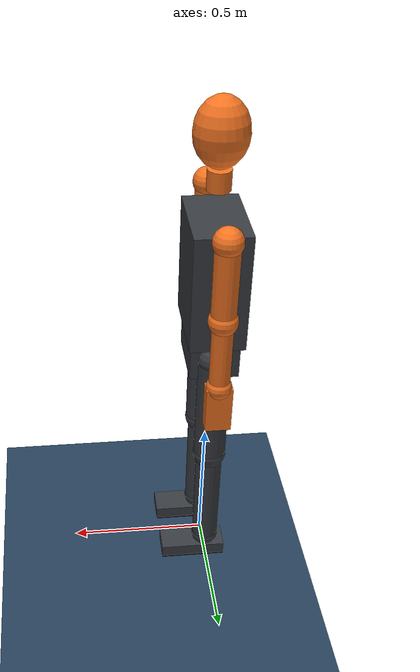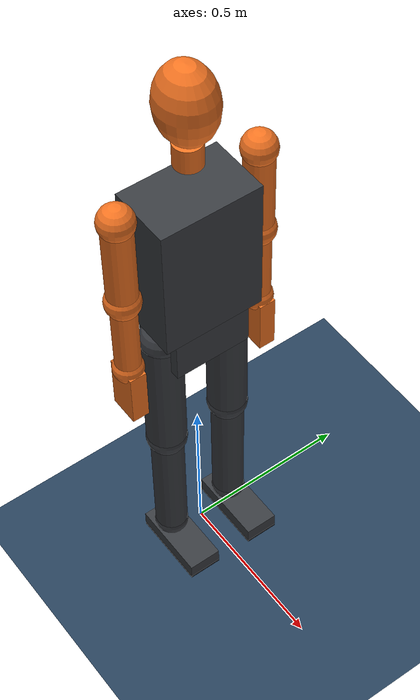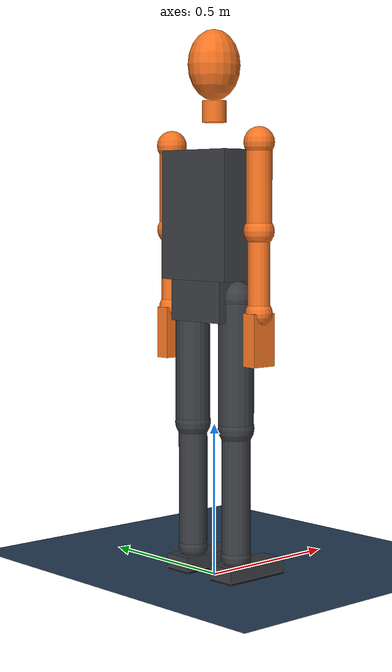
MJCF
<mujoco model="erobot_scene">
  <include file="erobot.xml"/>
  <statistic center="0 0 0.8" extent="2.0"/>
  <visual>
    <headlight diffuse="0.6 0.6 0.6" ambient="0.3 0.3 0.3" specular="0 0 0"/>
    <rgba haze="0.15 0.25 0.35 1"/>
    <global azimuth="120" elevation="-20" offwidth="640" offheight="960"/>
  </visual>
  <asset>
    <texture type="skybox" builtin="gradient" rgb1="0.3 0.5 0.7" rgb2="0 0 0" width="512" height="512"/>
    <texture name="groundplane" type="2d" builtin="checker" mark="edge"
             rgb1="0.2 0.3 0.4" rgb2="0.1 0.2 0.3" markrgb="0.8 0.8 0.8"
             width="300" height="300"/>
    <material name="groundplane" texture="groundplane" texuniform="true"
              texrepeat="5 5" reflectance="0.2"/>
  </asset>
  <worldbody>
    <light pos="0 0 3.0" dir="0 0 -1" directional="true"/>
    <geom name="floor" type="plane" size="0 0 0.05" material="groundplane"
          contype="1" conaffinity="1" condim="3" friction="1.0 0.02 0.001"/>
    <camera name="track" mode="trackcom" pos="0 -2.5 1.2" xyaxes="1 0 0 0 0.4 1"/>
  </worldbody>
</mujoco>

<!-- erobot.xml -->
<mujoco model="erobot">
  <compiler angle="radian" autolimits="true" />
  <option timestep="0.002" integrator="implicitfast" />
  <default>
    <default class="erobot">
      <default class="visual">
        <geom group="2" contype="0" conaffinity="0" density="0" />
      </default>
      <default class="collision">
        <geom group="3" contype="1" conaffinity="1" condim="3" friction="1.0 0.02 0.001" density="0" />
      </default>
    </default>
  </default>
  <asset>
    <material name="PA6_GF30" rgba="0.22 0.23 0.25 1" reflectance="0.3" />
    <material name="PC_ABS" rgba="0.95 0.45 0.13 1" reflectance="0.2" />
    <material name="TPU_SHORE_A95" rgba="0.07 0.07 0.08 1" reflectance="0.1" />
  </asset>
  <worldbody>
    <body name="pelvis" pos="0 0 0.918">
      <freejoint name="root" />
      <inertial pos="0 0 0" quat="0.707107 0 0 -0.707107" mass="0.808656" diaginertia="0.00346374 0.00508106 0.00551234" />
      <site name="imu_site" pos="0 0 0" size="0.01" />
      <geom name="pelvis_shell" class="visual" material="PA6_GF30" type="box" size="0.085 0.115 0.075" pos="0 0 0" />
      <body name="left_hip_pitch" pos="0 0.105 0">
        <inertial pos="0 0 0" quat="1 0 0 0" mass="1.03457" diaginertia="0.00044298 0.00044298 0.00044298" />
        <joint name="left_hip_pitch_joint" type="hinge" axis="0 1 0" range="-2 1" damping="2" armature="0.1" frictionloss="0.4" />
        <geom name="left_hip_pitch_shell" class="visual" material="PA6_GF30" type="sphere" size="0.06" pos="0 0 0" />
        <body name="left_hip_roll" pos="0 0 0">
          <inertial pos="0 0 0" quat="1 0 0 0" mass="1.03457" diaginertia="0.00044298 0.00044298 0.00044298" />
          <joint name="left_hip_roll_joint" type="hinge" axis="1 0 0" range="-0.2 0.5" damping="2" armature="0.1" frictionloss="0.4" />
          <geom name="left_hip_roll_shell" class="visual" material="PA6_GF30" type="sphere" size="0.06" pos="0 0 0" />
          <body name="left_hip_yaw" pos="0 0 0">
            <inertial pos="0 0 -0.127081" quat="0.707107 0 0.707107 -0" mass="1.31695" diaginertia="0.00268095 0.026933 0.026933" />
            <joint name="left_hip_yaw_joint" type="hinge" axis="0 0 1" range="-0.8 0.8" damping="1" armature="0.05" frictionloss="0.2" />
            <geom name="left_thigh_shell" class="visual" material="PA6_GF30" type="capsule" fromto="0 0 0 0 0 -0.42" size="0.058" />
            <body name="left_knee" pos="0 0 -0.42">
              <inertial pos="0 0 -0.0798658" quat="0.707107 0 0.707107 -0" mass="1.66951" diaginertia="0.00190588 0.0278597 0.0278597" />
              <joint name="left_knee_joint" type="hinge" axis="0 1 0" range="0 2.3" damping="2" armature="0.1" frictionloss="0.4" />
              <geom name="left_knee_shell" class="visual" material="PA6_GF30" type="sphere" size="0.06" pos="0 0 0" />
              <geom name="left_shank_shell" class="visual" material="PA6_GF30" type="capsule" fromto="0 0 0 0 0 -0.42" size="0.048" />
              <body name="left_ankle_pitch" pos="0 0 -0.42">
                <inertial pos="0 0 0" quat="1 0 0 0" mass="0.648177" diaginertia="0.000213628 0.000213628 0.000213628" />
                <joint name="left_ankle_pitch_joint" type="hinge" axis="0 1 0" range="-0.9 0.5" damping="1" armature="0.05" frictionloss="0.2" />
                <geom name="left_ankle_pitch_shell" class="visual" material="PA6_GF30" type="sphere" size="0.05" pos="0 0 0" />
                <body name="left_ankle_roll" pos="0 0 0">
                  <inertial pos="0.0217155 0 -0.0259583" quat="0.125027 0.125027 -0.695966 0.695966" mass="1.14582" diaginertia="0.00145485 0.00403312 0.00444494" />
                  <joint name="left_ankle_roll_joint" type="hinge" axis="1 0 0" range="-0.3 0.3" damping="1" armature="0.05" frictionloss="0.2" />
                  <geom name="left_ankle_roll_shell" class="visual" material="PA6_GF30" type="sphere" size="0.05" pos="0 0 0" />
                  <geom name="left_foot_shell" class="visual" material="PA6_GF30" type="box" size="0.12 0.05 0.0225" pos="0.05 0 -0.0475" />
                  <geom name="left_foot_sole" class="visual" material="TPU_SHORE_A95" type="box" size="0.12 0.05 0.004" pos="0.05 0 -0.074" />
                  <geom name="left_foot_sole_col" class="collision" material="TPU_SHORE_A95" type="box" size="0.12 0.05 0.004" pos="0.05 0 -0.074" />
                </body>
              </body>
            </body>
          </body>
        </body>
      </body>
      <body name="right_hip_pitch" pos="0 -0.105 0">
        <inertial pos="0 0 0" quat="1 0 0 0" mass="1.03457" diaginertia="0.00044298 0.00044298 0.00044298" />
        <joint name="right_hip_pitch_joint" type="hinge" axis="0 1 0" range="-2 1" damping="2" armature="0.1" frictionloss="0.4" />
        <geom name="right_hip_pitch_shell" class="visual" material="PA6_GF30" type="sphere" size="0.06" pos="0 0 0" />
        <body name="right_hip_roll" pos="0 0 0">
          <inertial pos="0 0 0" quat="1 0 0 0" mass="1.03457" diaginertia="0.00044298 0.00044298 0.00044298" />
          <joint name="right_hip_roll_joint" type="hinge" axis="1 0 0" range="-0.5 0.2" damping="2" armature="0.1" frictionloss="0.4" />
          <geom name="right_hip_roll_shell" class="visual" material="PA6_GF30" type="sphere" size="0.06" pos="0 0 0" />
          <body name="right_hip_yaw" pos="0 0 0">
            <inertial pos="0 0 -0.127081" quat="0.707107 0 0.707107 -0" mass="1.31695" diaginertia="0.00268095 0.026933 0.026933" />
            <joint name="right_hip_yaw_joint" type="hinge" axis="0 0 1" range="-0.8 0.8" damping="1" armature="0.05" frictionloss="0.2" />
            <geom name="right_thigh_shell" class="visual" material="PA6_GF30" type="capsule" fromto="0 0 0 0 0 -0.42" size="0.058" />
            <body name="right_knee" pos="0 0 -0.42">
              <inertial pos="0 0 -0.0798658" quat="0.707107 0 0.707107 -0" mass="1.66951" diaginertia="0.00190588 0.0278597 0.0278597" />
              <joint name="right_knee_joint" type="hinge" axis="0 1 0" range="0 2.3" damping="2" armature="0.1" frictionloss="0.4" />
              <geom name="right_knee_shell" class="visual" material="PA6_GF30" type="sphere" size="0.06" pos="0 0 0" />
              <geom name="right_shank_shell" class="visual" material="PA6_GF30" type="capsule" fromto="0 0 0 0 0 -0.42" size="0.048" />
              <body name="right_ankle_pitch" pos="0 0 -0.42">
                <inertial pos="0 0 0" quat="1 0 0 0" mass="0.648177" diaginertia="0.000213628 0.000213628 0.000213628" />
                <joint name="right_ankle_pitch_joint" type="hinge" axis="0 1 0" range="-0.9 0.5" damping="1" armature="0.05" frictionloss="0.2" />
                <geom name="right_ankle_pitch_shell" class="visual" material="PA6_GF30" type="sphere" size="0.05" pos="0 0 0" />
                <body name="right_ankle_roll" pos="0 0 0">
                  <inertial pos="0.0217155 0 -0.0259583" quat="0.125027 0.125027 -0.695966 0.695966" mass="1.14582" diaginertia="0.00145485 0.00403312 0.00444494" />
                  <joint name="right_ankle_roll_joint" type="hinge" axis="1 0 0" range="-0.3 0.3" damping="1" armature="0.05" frictionloss="0.2" />
                  <geom name="right_ankle_roll_shell" class="visual" material="PA6_GF30" type="sphere" size="0.05" pos="0 0 0" />
                  <geom name="right_foot_shell" class="visual" material="PA6_GF30" type="box" size="0.12 0.05 0.0225" pos="0.05 0 -0.0475" />
                  <geom name="right_foot_sole" class="visual" material="TPU_SHORE_A95" type="box" size="0.12 0.05 0.004" pos="0.05 0 -0.074" />
                  <geom name="right_foot_sole_col" class="collision" material="TPU_SHORE_A95" type="box" size="0.12 0.05 0.004" pos="0.05 0 -0.074" />
                </body>
              </body>
            </body>
          </body>
        </body>
      </body>
      <body name="torso" pos="0 0 0.06">
        <inertial pos="0 0 0.0757571" quat="1 0 0 0" mass="5.94445" diaginertia="0.0645322 0.0660633 0.0984288" />
        <joint name="waist_yaw_joint" type="hinge" axis="0 0 1" range="-1 1" damping="1" armature="0.05" frictionloss="0.2" />
        <geom name="torso_shell" class="visual" material="PA6_GF30" type="box" size="0.095 0.15 0.21" pos="0 0 0.21" />
        <body name="left_shoulder_pitch" pos="0 0.21 0.44">
          <inertial pos="0 0 0" quat="1 0 0 0" mass="0.60875" diaginertia="0.000147917 0.000147917 0.000147917" />
          <joint name="left_shoulder_pitch_joint" type="hinge" axis="0 1 0" range="-3 1.5" damping="1" armature="0.05" frictionloss="0.2" />
          <geom name="left_shoulder_shell" class="visual" material="PC_ABS" type="sphere" size="0.05" pos="0 0 0" />
          <body name="left_shoulder_roll" pos="0 0 0">
            <inertial pos="0 0 0" quat="1 0 0 0" mass="0.52" diaginertia="1e-07 1e-07 1e-07" />
            <joint name="left_shoulder_roll_joint" type="hinge" axis="1 0 0" range="-1.6 1.6" damping="1" armature="0.05" frictionloss="0.2" />
            <body name="left_shoulder_yaw" pos="0 0 0">
              <inertial pos="0 0 -0.0480067" quat="0.707107 0 0.707107 -0" mass="0.791362" diaginertia="0.000478683 0.00550713 0.00550713" />
              <joint name="left_shoulder_yaw_joint" type="hinge" axis="0 0 1" range="-1.6 1.6" damping="1" armature="0.05" frictionloss="0.2" />
              <geom name="left_upper_arm_shell" class="visual" material="PC_ABS" type="capsule" fromto="0 0 0 0 0 -0.28" size="0.042" />
              <body name="left_elbow" pos="0 0 -0.28">
                <inertial pos="0 0 -0.0335964" quat="0.707107 0 0.707107 -0" mass="0.820898" diaginertia="0.00042286 0.00413923 0.00413923" />
                <joint name="left_elbow_joint" type="hinge" axis="0 1 0" range="0 2.5" damping="1" armature="0.05" frictionloss="0.2" />
                <geom name="left_elbow_shell" class="visual" material="PC_ABS" type="sphere" size="0.05" pos="0 0 0" />
                <geom name="left_forearm_shell" class="visual" material="PC_ABS" type="capsule" fromto="0 0 0 0 0 -0.26" size="0.036" />
                <body name="left_wrist_yaw" pos="0 0 -0.26">
                  <inertial pos="0 0 -0.0340951" quat="0.5 -0.5 -0.5 -0.5" mass="0.398623" diaginertia="0.000229946 0.00119895 0.00127357" />
                  <joint name="left_wrist_yaw_joint" type="hinge" axis="0 0 1" range="-2 2" damping="0.5" armature="0.02" frictionloss="0.1" />
                  <geom name="left_wrist_shell" class="visual" material="PC_ABS" type="sphere" size="0.044" pos="0 0 0" />
                  <geom name="left_hand_shell" class="visual" material="PC_ABS" type="box" size="0.045 0.025 0.085" pos="0 0 -0.085" />
                </body>
              </body>
            </body>
          </body>
        </body>
        <body name="right_shoulder_pitch" pos="0 -0.21 0.44">
          <inertial pos="0 0 0" quat="1 0 0 0" mass="0.60875" diaginertia="0.000147917 0.000147917 0.000147917" />
          <joint name="right_shoulder_pitch_joint" type="hinge" axis="0 1 0" range="-3 1.5" damping="1" armature="0.05" frictionloss="0.2" />
          <geom name="right_shoulder_shell" class="visual" material="PC_ABS" type="sphere" size="0.05" pos="0 0 0" />
          <body name="right_shoulder_roll" pos="0 0 0">
            <inertial pos="0 0 0" quat="1 0 0 0" mass="0.52" diaginertia="1e-07 1e-07 1e-07" />
            <joint name="right_shoulder_roll_joint" type="hinge" axis="1 0 0" range="-1.6 1.6" damping="1" armature="0.05" frictionloss="0.2" />
            <body name="right_shoulder_yaw" pos="0 0 0">
              <inertial pos="0 0 -0.0480067" quat="0.707107 0 0.707107 -0" mass="0.791362" diaginertia="0.000478683 0.00550713 0.00550713" />
              <joint name="right_shoulder_yaw_joint" type="hinge" axis="0 0 1" range="-1.6 1.6" damping="1" armature="0.05" frictionloss="0.2" />
              <geom name="right_upper_arm_shell" class="visual" material="PC_ABS" type="capsule" fromto="0 0 0 0 0 -0.28" size="0.042" />
              <body name="right_elbow" pos="0 0 -0.28">
                <inertial pos="0 0 -0.0335964" quat="0.707107 0 0.707107 -0" mass="0.820898" diaginertia="0.00042286 0.00413923 0.00413923" />
                <joint name="right_elbow_joint" type="hinge" axis="0 1 0" range="0 2.5" damping="1" armature="0.05" frictionloss="0.2" />
                <geom name="right_elbow_shell" class="visual" material="PC_ABS" type="sphere" size="0.05" pos="0 0 0" />
                <geom name="right_forearm_shell" class="visual" material="PC_ABS" type="capsule" fromto="0 0 0 0 0 -0.26" size="0.036" />
                <body name="right_wrist_yaw" pos="0 0 -0.26">
                  <inertial pos="0 0 -0.0340951" quat="0.5 -0.5 -0.5 -0.5" mass="0.398623" diaginertia="0.000229946 0.00119895 0.00127357" />
                  <joint name="right_wrist_yaw_joint" type="hinge" axis="0 0 1" range="-2 2" damping="0.5" armature="0.02" frictionloss="0.1" />
                  <geom name="right_wrist_shell" class="visual" material="PC_ABS" type="sphere" size="0.044" pos="0 0 0" />
                  <geom name="right_hand_shell" class="visual" material="PC_ABS" type="box" size="0.045 0.025 0.085" pos="0 0 -0.085" />
                </body>
              </body>
            </body>
          </body>
        </body>
        <body name="neck" pos="0 0 0.51">
          <inertial pos="0 0 0.0110177" quat="0.707107 0 0.707107 -0" mass="0.2481" diaginertia="0.00012496 0.000159926 0.000159926" />
          <joint name="neck_yaw_joint" type="hinge" axis="0 0 1" range="-1.2 1.2" damping="0.5" armature="0.02" frictionloss="0.1" />
          <geom name="neck_shell" class="visual" material="PC_ABS" type="cylinder" fromto="0 0 0 0 0 0.07" size="0.04" />
          <body name="head" pos="0 0 0.07">
            <inertial pos="0 0 0.0642115" quat="1 0 0 0" mass="0.570602" diaginertia="0.00131878 0.00282485 0.00311136" />
            <joint name="neck_pitch_joint" type="hinge" axis="0 1 0" range="-0.6 0.6" damping="0.5" armature="0.02" frictionloss="0.1" />
            <geom name="head_shell" class="visual" material="PC_ABS" type="ellipsoid" size="0.09 0.08 0.115" pos="0 0 0.115" />
          </body>
        </body>
      </body>
    </body>
  </worldbody>
  <actuator>
    <position name="left_hip_pitch_act" joint="left_hip_pitch_joint" kp="320" ctrlrange="-2 1" forcerange="-120 120" />
    <position name="left_hip_roll_act" joint="left_hip_roll_joint" kp="320" ctrlrange="-0.2 0.5" forcerange="-120 120" />
    <position name="left_hip_yaw_act" joint="left_hip_yaw_joint" kp="140" ctrlrange="-0.8 0.8" forcerange="-24 24" />
    <position name="left_knee_act" joint="left_knee_joint" kp="320" ctrlrange="0 2.3" forcerange="-120 120" />
    <position name="left_ankle_pitch_act" joint="left_ankle_pitch_joint" kp="140" ctrlrange="-0.9 0.5" forcerange="-24 24" />
    <position name="left_ankle_roll_act" joint="left_ankle_roll_joint" kp="140" ctrlrange="-0.3 0.3" forcerange="-24 24" />
    <position name="right_hip_pitch_act" joint="right_hip_pitch_joint" kp="320" ctrlrange="-2 1" forcerange="-120 120" />
    <position name="right_hip_roll_act" joint="right_hip_roll_joint" kp="320" ctrlrange="-0.5 0.2" forcerange="-120 120" />
    <position name="right_hip_yaw_act" joint="right_hip_yaw_joint" kp="140" ctrlrange="-0.8 0.8" forcerange="-24 24" />
    <position name="right_knee_act" joint="right_knee_joint" kp="320" ctrlrange="0 2.3" forcerange="-120 120" />
    <position name="right_ankle_pitch_act" joint="right_ankle_pitch_joint" kp="140" ctrlrange="-0.9 0.5" forcerange="-24 24" />
    <position name="right_ankle_roll_act" joint="right_ankle_roll_joint" kp="140" ctrlrange="-0.3 0.3" forcerange="-24 24" />
    <position name="waist_yaw_act" joint="waist_yaw_joint" kp="140" ctrlrange="-1 1" forcerange="-24 24" />
    <position name="left_shoulder_pitch_act" joint="left_shoulder_pitch_joint" kp="140" ctrlrange="-3 1.5" forcerange="-24 24" />
    <position name="left_shoulder_roll_act" joint="left_shoulder_roll_joint" kp="140" ctrlrange="-1.6 1.6" forcerange="-24 24" />
    <position name="left_shoulder_yaw_act" joint="left_shoulder_yaw_joint" kp="140" ctrlrange="-1.6 1.6" forcerange="-24 24" />
    <position name="left_elbow_act" joint="left_elbow_joint" kp="140" ctrlrange="0 2.5" forcerange="-24 24" />
    <position name="left_wrist_yaw_act" joint="left_wrist_yaw_joint" kp="45" ctrlrange="-2 2" forcerange="-10 10" />
    <position name="right_shoulder_pitch_act" joint="right_shoulder_pitch_joint" kp="140" ctrlrange="-3 1.5" forcerange="-24 24" />
    <position name="right_shoulder_roll_act" joint="right_shoulder_roll_joint" kp="140" ctrlrange="-1.6 1.6" forcerange="-24 24" />
    <position name="right_shoulder_yaw_act" joint="right_shoulder_yaw_joint" kp="140" ctrlrange="-1.6 1.6" forcerange="-24 24" />
    <position name="right_elbow_act" joint="right_elbow_joint" kp="140" ctrlrange="0 2.5" forcerange="-24 24" />
    <position name="right_wrist_yaw_act" joint="right_wrist_yaw_joint" kp="45" ctrlrange="-2 2" forcerange="-10 10" />
    <position name="neck_yaw_act" joint="neck_yaw_joint" kp="45" ctrlrange="-1.2 1.2" forcerange="-10 10" />
    <position name="neck_pitch_act" joint="neck_pitch_joint" kp="45" ctrlrange="-0.6 0.6" forcerange="-10 10" />
  </actuator>
  <sensor>
    <framequat name="imu_quat" objtype="body" objname="pelvis" />
    <gyro name="imu_gyro" site="imu_site" />
    <accelerometer name="imu_acc" site="imu_site" />
    <jointpos name="left_hip_pitch_joint_pos" joint="left_hip_pitch_joint" />
    <jointvel name="left_hip_pitch_joint_vel" joint="left_hip_pitch_joint" />
    <jointpos name="left_hip_roll_joint_pos" joint="left_hip_roll_joint" />
    <jointvel name="left_hip_roll_joint_vel" joint="left_hip_roll_joint" />
    <jointpos name="left_hip_yaw_joint_pos" joint="left_hip_yaw_joint" />
    <jointvel name="left_hip_yaw_joint_vel" joint="left_hip_yaw_joint" />
    <jointpos name="left_knee_joint_pos" joint="left_knee_joint" />
    <jointvel name="left_knee_joint_vel" joint="left_knee_joint" />
    <jointpos name="left_ankle_pitch_joint_pos" joint="left_ankle_pitch_joint" />
    <jointvel name="left_ankle_pitch_joint_vel" joint="left_ankle_pitch_joint" />
    <jointpos name="left_ankle_roll_joint_pos" joint="left_ankle_roll_joint" />
    <jointvel name="left_ankle_roll_joint_vel" joint="left_ankle_roll_joint" />
    <jointpos name="right_hip_pitch_joint_pos" joint="right_hip_pitch_joint" />
    <jointvel name="right_hip_pitch_joint_vel" joint="right_hip_pitch_joint" />
    <jointpos name="right_hip_roll_joint_pos" joint="right_hip_roll_joint" />
    <jointvel name="right_hip_roll_joint_vel" joint="right_hip_roll_joint" />
    <jointpos name="right_hip_yaw_joint_pos" joint="right_hip_yaw_joint" />
    <jointvel name="right_hip_yaw_joint_vel" joint="right_hip_yaw_joint" />
    <jointpos name="right_knee_joint_pos" joint="right_knee_joint" />
    <jointvel name="right_knee_joint_vel" joint="right_knee_joint" />
    <jointpos name="right_ankle_pitch_joint_pos" joint="right_ankle_pitch_joint" />
    <jointvel name="right_ankle_pitch_joint_vel" joint="right_ankle_pitch_joint" />
    <jointpos name="right_ankle_roll_joint_pos" joint="right_ankle_roll_joint" />
    <jointvel name="right_ankle_roll_joint_vel" joint="right_ankle_roll_joint" />
    <jointpos name="waist_yaw_joint_pos" joint="waist_yaw_joint" />
    <jointvel name="waist_yaw_joint_vel" joint="waist_yaw_joint" />
    <jointpos name="left_shoulder_pitch_joint_pos" joint="left_shoulder_pitch_joint" />
    <jointvel name="left_shoulder_pitch_joint_vel" joint="left_shoulder_pitch_joint" />
    <jointpos name="left_shoulder_roll_joint_pos" joint="left_shoulder_roll_joint" />
    <jointvel name="left_shoulder_roll_joint_vel" joint="left_shoulder_roll_joint" />
    <jointpos name="left_shoulder_yaw_joint_pos" joint="left_shoulder_yaw_joint" />
    <jointvel name="left_shoulder_yaw_joint_vel" joint="left_shoulder_yaw_joint" />
    <jointpos name="left_elbow_joint_pos" joint="left_elbow_joint" />
    <jointvel name="left_elbow_joint_vel" joint="left_elbow_joint" />
    <jointpos name="left_wrist_yaw_joint_pos" joint="left_wrist_yaw_joint" />
    <jointvel name="left_wrist_yaw_joint_vel" joint="left_wrist_yaw_joint" />
    <jointpos name="right_shoulder_pitch_joint_pos" joint="right_shoulder_pitch_joint" />
    <jointvel name="right_shoulder_pitch_joint_vel" joint="right_shoulder_pitch_joint" />
    <jointpos name="right_shoulder_roll_joint_pos" joint="right_shoulder_roll_joint" />
    <jointvel name="right_shoulder_roll_joint_vel" joint="right_shoulder_roll_joint" />
    <jointpos name="right_shoulder_yaw_joint_pos" joint="right_shoulder_yaw_joint" />
    <jointvel name="right_shoulder_yaw_joint_vel" joint="right_shoulder_yaw_joint" />
    <jointpos name="right_elbow_joint_pos" joint="right_elbow_joint" />
    <jointvel name="right_elbow_joint_vel" joint="right_elbow_joint" />
    <jointpos name="right_wrist_yaw_joint_pos" joint="right_wrist_yaw_joint" />
    <jointvel name="right_wrist_yaw_joint_vel" joint="right_wrist_yaw_joint" />
    <jointpos name="neck_yaw_joint_pos" joint="neck_yaw_joint" />
    <jointvel name="neck_yaw_joint_vel" joint="neck_yaw_joint" />
    <jointpos name="neck_pitch_joint_pos" joint="neck_pitch_joint" />
    <jointvel name="neck_pitch_joint_vel" joint="neck_pitch_joint" />
  </sensor>
  <keyframe>
    <key name="home" qpos="0 0 0.918 1 0 0 0 0 0 0 0 0 0 0 -0 -0 0 0 -0 0 0 0 0 0.3 0 0 -0 -0 0.3 -0 0 0" ctrl="0 0 0 0 0 0 0 -0 -0 0 0 -0 0 0 0 0 0.3 0 0 -0 -0 0.3 -0 0 0" />
  </keyframe>
</mujoco>
